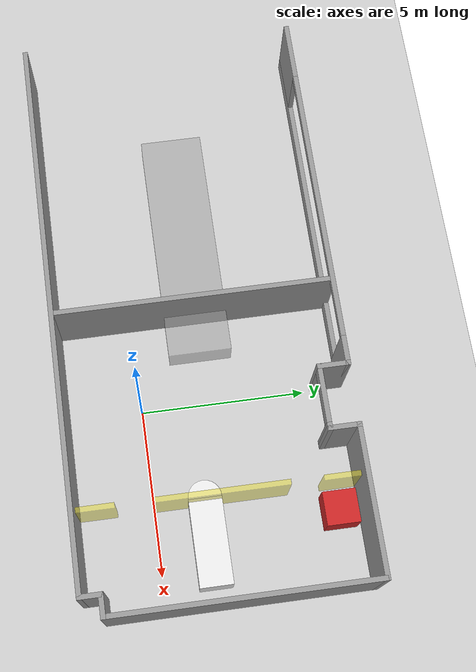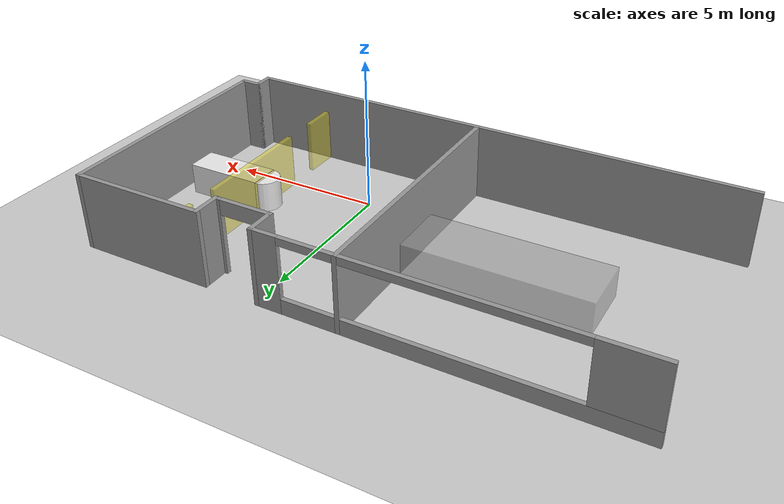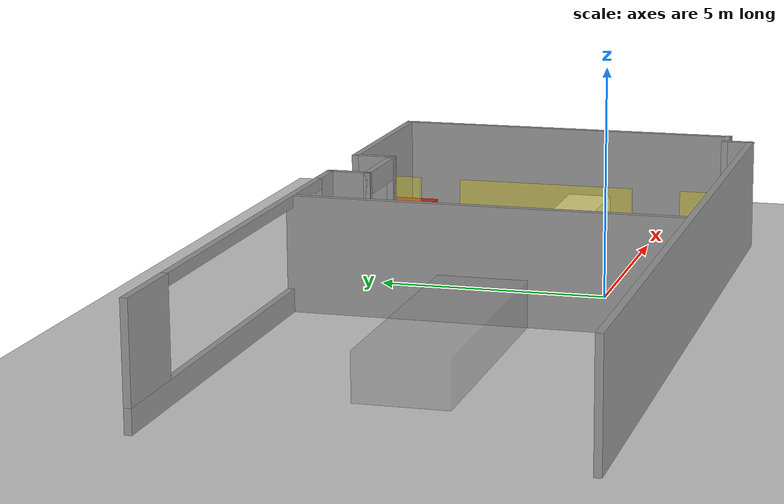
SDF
<sdf version="1.6">
 <world name="default">
  <light name="sun" type="directional">
   <pose>0 0 10 0 -0 0</pose>
   <diffuse>0.8 0.8 0.8 1</diffuse>
   <specular>0.2 0.2 0.2 1</specular>
   <attenuation>
    <range>1000</range>
    <constant>0.9</constant>
    <linear>0.01</linear>
    <quadratic>0.001</quadratic>
   </attenuation>
   <direction>-0.5 0.1 -0.9</direction>
  </light>
  <model name="ground_plane">
   <static>1</static>
   <link name="link">
    <collision name="collision">
     <geometry><plane><normal>0 0 1</normal><size>100 100</size></plane></geometry>
     <surface>
      <contact><collide_bitmask>65535</collide_bitmask></contact>
      <friction><ode><mu>100</mu><mu2>50</mu2></ode></friction>
     </surface>
    </collision>
    <visual name="visual">
     <cast_shadows>0</cast_shadows>
     <geometry><plane><normal>0 0 1</normal><size>100 100</size></plane></geometry>
     <material>
      <script><uri>file://media/materials/scripts/gazebo.material</uri><name>Gazebo/Grey</name></script>
     </material>
    </visual>
   </link>
  </model>
  <gravity>0 0 -9.8</gravity>
  <magnetic_field>6e-06 2.3e-05 -4.2e-05</magnetic_field>
  <atmosphere type="adiabatic"/>
  <physics name="default_physics" default="0" type="ode">
   <max_step_size>0.001</max_step_size>
   <real_time_factor>1</real_time_factor>
   <real_time_update_rate>1000</real_time_update_rate>
  </physics>
  <scene><ambient>0.4 0.4 0.4 1</ambient><background>0.7 0.7 0.7 1</background><shadows>1</shadows></scene>
  <audio><device>default</device></audio>
  <spherical_coordinates>
   <surface_model>EARTH_WGS84</surface_model>
   <latitude_deg>0</latitude_deg>
   <longitude_deg>0</longitude_deg>
   <elevation>0</elevation>
   <heading_deg>0</heading_deg>
  </spherical_coordinates>
  <model name="ENTLabConveyor">
   <link name="link_2">
    <inertial>
     <mass>1</mass>
     <inertia>
      <ixx>0.166667</ixx>
      <ixy>0</ixy>
      <ixz>0</ixz>
      <iyy>0.166667</iyy>
      <iyz>0</iyz>
      <izz>0.166667</izz>
     </inertia>
    </inertial>
    <pose>-0.32319 2.94451 -0.093077 0 -0 0</pose>
    <visual name="visual">
     <geometry><box><size>1 1 1</size></box></geometry>
     <material>
      <lighting>1</lighting>
      <script><uri>file://media/materials/scripts/gazebo.material</uri><name>Gazebo/Red</name></script>
      <shader type="vertex"><normal_map>__default__</normal_map></shader>
     </material>
    </visual>
    <collision name="collision">
     <geometry><box><size>1 1 1</size></box></geometry>
     <surface>
      <friction>
       <ode><mu>1</mu><mu2>1</mu2><fdir1>0 0 0</fdir1><slip1>0</slip1><slip2>0</slip2></ode>
       <torsional>
        <coefficient>1</coefficient>
        <patch_radius>0</patch_radius>
        <surface_radius>0</surface_radius>
        <use_patch_radius>1</use_patch_radius>
        <ode><slip>0</slip></ode>
       </torsional>
      </friction>
      <bounce><restitution_coefficient>0</restitution_coefficient><threshold>1e+06</threshold></bounce>
      <contact>
       <collide_without_contact>0</collide_without_contact>
       <collide_without_contact_bitmask>1</collide_without_contact_bitmask>
       <collide_bitmask>1</collide_bitmask>
       <ode>
        <soft_cfm>0</soft_cfm>
        <soft_erp>0.2</soft_erp>
        <kp>1e+13</kp>
        <kd>1</kd>
        <max_vel>0.01</max_vel>
        <min_depth>0</min_depth>
       </ode>
       <bullet>
        <split_impulse>1</split_impulse>
        <split_impulse_penetration_threshold>-0.01</split_impulse_penetration_threshold>
        <soft_cfm>0</soft_cfm>
        <soft_erp>0.2</soft_erp>
        <kp>1e+13</kp>
        <kd>1</kd>
       </bullet>
      </contact>
     </surface>
    </collision>
   </link>
   <link name="link_3">
    <inertial>
     <mass>1</mass>
     <inertia><ixx>0.145833</ixx><ixy>0</ixy><ixz>0</ixz><iyy>0.145833</iyy><iyz>0</iyz><izz>0.125</izz></inertia>
    </inertial>
    <pose>-1.13282 -0.976773 -0.093077 0 -0 0</pose>
    <visual name="visual">
     <geometry><cylinder><radius>0.5</radius><length>1</length></cylinder></geometry>
     <material>
      <lighting>1</lighting>
      <script><uri>file://media/materials/scripts/gazebo.material</uri><name>Gazebo/White</name></script>
      <shader type="vertex"><normal_map>__default__</normal_map></shader>
      <ambient>0.3 0.3 0.3 1</ambient>
      <diffuse>0.7 0.7 0.7 1</diffuse>
      <specular>0.01 0.01 0.01 1</specular>
      <emissive>0 0 0 1</emissive>
     </material>
    </visual>
    <collision name="collision">
     <geometry><cylinder><radius>0.5</radius><length>1</length></cylinder></geometry>
     <surface>
      <friction>
       <ode><mu>1</mu><mu2>1</mu2><fdir1>0 0 0</fdir1><slip1>0</slip1><slip2>0</slip2></ode>
       <torsional>
        <coefficient>1</coefficient>
        <patch_radius>0</patch_radius>
        <surface_radius>0</surface_radius>
        <use_patch_radius>1</use_patch_radius>
        <ode><slip>0</slip></ode>
       </torsional>
      </friction>
      <bounce><restitution_coefficient>0</restitution_coefficient><threshold>1e+06</threshold></bounce>
      <contact>
       <collide_without_contact>0</collide_without_contact>
       <collide_without_contact_bitmask>1</collide_without_contact_bitmask>
       <collide_bitmask>1</collide_bitmask>
       <ode>
        <soft_cfm>0</soft_cfm>
        <soft_erp>0.2</soft_erp>
        <kp>1e+13</kp>
        <kd>1</kd>
        <max_vel>0.01</max_vel>
        <min_depth>0</min_depth>
       </ode>
       <bullet>
        <split_impulse>1</split_impulse>
        <split_impulse_penetration_threshold>-0.01</split_impulse_penetration_threshold>
        <soft_cfm>0</soft_cfm>
        <soft_erp>0.2</soft_erp>
        <kp>1e+13</kp>
        <kd>1</kd>
       </bullet>
      </contact>
     </surface>
    </collision>
   </link>
   <link name="link_4">
    <inertial>
     <mass>2.64263</mass>
     <inertia><ixx>0.45335</ixx><ixy>0</ixy><ixz>0</ixz><iyy>1.68559</iyy><iyz>0</iyz><izz>1.66874</izz></inertia>
    </inertial>
    <pose>0.16809 -0.979226 -0.093077 0 -0 0</pose>
    <visual name="visual">
     <geometry><box><size>2.56643 0.995523 1.03323</size></box></geometry>
     <material>
      <lighting>1</lighting>
      <script><uri>file://media/materials/scripts/gazebo.material</uri><name>Gazebo/White</name></script>
      <shader type="vertex"><normal_map>__default__</normal_map></shader>
      <ambient>0.3 0.3 0.3 1</ambient>
      <diffuse>0.7 0.7 0.7 1</diffuse>
      <specular>0.01 0.01 0.01 1</specular>
      <emissive>0 0 0 1</emissive>
     </material>
    </visual>
    <collision name="collision">
     <geometry><box><size>2.56643 0.995523 1.03323</size></box></geometry>
     <surface>
      <friction>
       <ode><mu>1</mu><mu2>1</mu2><fdir1>0 0 0</fdir1><slip1>0</slip1><slip2>0</slip2></ode>
       <torsional>
        <coefficient>1</coefficient>
        <patch_radius>0</patch_radius>
        <surface_radius>0</surface_radius>
        <use_patch_radius>1</use_patch_radius>
        <ode><slip>0</slip></ode>
       </torsional>
      </friction>
      <bounce><restitution_coefficient>0</restitution_coefficient><threshold>1e+06</threshold></bounce>
      <contact>
       <collide_without_contact>0</collide_without_contact>
       <collide_without_contact_bitmask>1</collide_without_contact_bitmask>
       <collide_bitmask>1</collide_bitmask>
       <ode>
        <soft_cfm>0</soft_cfm>
        <soft_erp>0.2</soft_erp>
        <kp>1e+13</kp>
        <kd>1</kd>
        <max_vel>0.01</max_vel>
        <min_depth>0</min_depth>
       </ode>
       <bullet>
        <split_impulse>1</split_impulse>
        <split_impulse_penetration_threshold>-0.01</split_impulse_penetration_threshold>
        <soft_cfm>0</soft_cfm>
        <soft_erp>0.2</soft_erp>
        <kp>1e+13</kp>
        <kd>1</kd>
       </bullet>
      </contact>
     </surface>
    </collision>
   </link>
   <static>1</static>
   <pose>4.12263 2.50542 0.593077 0 -0 0</pose>
  </model>
  <model name="ENTWalls">
   <link name="link_0">
    <inertial>
     <mass>13.9555</mass>
     <inertia><ixx>5.43764</ixx><ixy>0</ixy><ixz>0</ixz><iyy>62.7819</iyy><iyz>0</iyz><izz>65.8936</izz></inertia>
    </inertial>
    <pose>-6.05773 0.013006 -0.292574 0 -0 0</pose>
    <visual name="visual">
     <geometry><box><size>7.27906 1.91721 1</size></box></geometry>
     <material>
      <lighting>1</lighting>
      <script><uri>file://media/materials/scripts/gazebo.material</uri><name>Gazebo/Grey</name></script>
      <shader type="vertex"><normal_map>__default__</normal_map></shader>
     </material>
     <transparency>.5</transparency>
    </visual>
    <collision name="collision">
     <geometry><box><size>7.27906 1.91721 1</size></box></geometry>
     <surface>
      <friction>
       <ode><mu>1</mu><mu2>1</mu2><fdir1>0 0 0</fdir1><slip1>0</slip1><slip2>0</slip2></ode>
       <torsional>
        <coefficient>1</coefficient>
        <patch_radius>0</patch_radius>
        <surface_radius>0</surface_radius>
        <use_patch_radius>1</use_patch_radius>
        <ode><slip>0</slip></ode>
       </torsional>
      </friction>
      <bounce><restitution_coefficient>0</restitution_coefficient><threshold>1e+06</threshold></bounce>
      <contact>
       <collide_without_contact>0</collide_without_contact>
       <collide_without_contact_bitmask>1</collide_without_contact_bitmask>
       <collide_bitmask>1</collide_bitmask>
       <ode>
        <soft_cfm>0</soft_cfm>
        <soft_erp>0.2</soft_erp>
        <kp>1e+13</kp>
        <kd>1</kd>
        <max_vel>0.01</max_vel>
        <min_depth>0</min_depth>
       </ode>
       <bullet>
        <split_impulse>1</split_impulse>
        <split_impulse_penetration_threshold>-0.01</split_impulse_penetration_threshold>
        <soft_cfm>0</soft_cfm>
        <soft_erp>0.2</soft_erp>
        <kp>1e+13</kp>
        <kd>1</kd>
       </bullet>
      </contact>
     </surface>
    </collision>
   </link>
   <link name="link_1">
    <inertial>
     <mass>0.314016</mass>
     <inertia>
      <ixx>0.113391</ixx>
      <ixy>0</ixy>
      <ixz>0</ixz>
      <iyy>0.0806634</iyy>
      <iyz>0</iyz>
      <izz>0.0340523</izz>
     </inertia>
    </inertial>
    <pose>2.01478 -3.63981 0.097525 0 -0 0</pose>
    <visual name="visual">
     <geometry><box><size>0.159122 1.12959 1.74849</size></box></geometry>
     <material>
      <lighting>1</lighting>
      <script><uri>file://media/materials/scripts/gazebo.material</uri><name>Gazebo/Yellow</name></script>
     </material>
     <transparency>.5</transparency>
    </visual>
    <collision name="collision">
     <geometry><box><size>0.159122 1.12959 1.74849</size></box></geometry>
     <surface>
      <friction>
       <ode><mu>1</mu><mu2>1</mu2><fdir1>0 0 0</fdir1><slip1>0</slip1><slip2>0</slip2></ode>
       <torsional>
        <coefficient>1</coefficient>
        <patch_radius>0</patch_radius>
        <surface_radius>0</surface_radius>
        <use_patch_radius>1</use_patch_radius>
        <ode><slip>0</slip></ode>
       </torsional>
      </friction>
      <bounce><restitution_coefficient>0</restitution_coefficient><threshold>1e+06</threshold></bounce>
      <contact>
       <collide_without_contact>0</collide_without_contact>
       <collide_without_contact_bitmask>1</collide_without_contact_bitmask>
       <collide_bitmask>1</collide_bitmask>
       <ode>
        <soft_cfm>0</soft_cfm>
        <soft_erp>0.2</soft_erp>
        <kp>1e+13</kp>
        <kd>1</kd>
        <max_vel>0.01</max_vel>
        <min_depth>0</min_depth>
       </ode>
       <bullet>
        <split_impulse>1</split_impulse>
        <split_impulse_penetration_threshold>-0.01</split_impulse_penetration_threshold>
        <soft_cfm>0</soft_cfm>
        <soft_erp>0.2</soft_erp>
        <kp>1e+13</kp>
        <kd>1</kd>
       </bullet>
      </contact>
     </surface>
    </collision>
   </link>
   <link name="link_1_clone">
    <inertial>
     <mass>0.314016</mass>
     <inertia>
      <ixx>0.113391</ixx>
      <ixy>0</ixy>
      <ixz>0</ixz>
      <iyy>0.0806634</iyy>
      <iyz>0</iyz>
      <izz>0.0340523</izz>
     </inertia>
    </inertial>
    <pose>2.02579 3.58487 0.097525 0 -0 0</pose>
    <visual name="visual">
     <geometry><box><size>0.159122 1.12959 1.74849</size></box></geometry>
     <material>
      <lighting>1</lighting>
      <script><uri>file://media/materials/scripts/gazebo.material</uri><name>Gazebo/Yellow</name></script>
      <shader type="pixel"/>
     </material>
     <transparency>.5</transparency>
    </visual>
    <collision name="collision">
     <geometry><box><size>0.159122 1.12959 1.74849</size></box></geometry>
     <surface>
      <friction>
       <ode><mu>1</mu><mu2>1</mu2><fdir1>0 0 0</fdir1><slip1>0</slip1><slip2>0</slip2></ode>
       <torsional>
        <coefficient>1</coefficient>
        <patch_radius>0</patch_radius>
        <surface_radius>0</surface_radius>
        <use_patch_radius>1</use_patch_radius>
        <ode><slip>0</slip></ode>
       </torsional>
      </friction>
      <bounce><restitution_coefficient>0</restitution_coefficient><threshold>1e+06</threshold></bounce>
      <contact>
       <collide_without_contact>0</collide_without_contact>
       <collide_without_contact_bitmask>1</collide_without_contact_bitmask>
       <collide_bitmask>1</collide_bitmask>
       <ode>
        <soft_cfm>0</soft_cfm>
        <soft_erp>0.2</soft_erp>
        <kp>1e+13</kp>
        <kd>1</kd>
        <max_vel>0.01</max_vel>
        <min_depth>0</min_depth>
       </ode>
       <bullet>
        <split_impulse>1</split_impulse>
        <split_impulse_penetration_threshold>-0.01</split_impulse_penetration_threshold>
        <soft_cfm>0</soft_cfm>
        <soft_erp>0.2</soft_erp>
        <kp>1e+13</kp>
        <kd>1</kd>
       </bullet>
      </contact>
     </surface>
    </collision>
   </link>
   <link name="link_1_clone_0">
    <inertial>
     <mass>1.11463</mass>
     <inertia><ixx>1.77728</ixx><ixy>0</ixy><ixz>0</ixz><iyy>0.286324</iyy><iyz>0</iyz><izz>1.49566</izz></inertia>
    </inertial>
    <pose>2.01715 0.041929 0.097525 0 -0 0</pose>
    <visual name="visual">
     <geometry><box><size>0.159122 4.00959 1.74849</size></box></geometry>
     <material>
      <lighting>1</lighting>
      <script><uri>file://media/materials/scripts/gazebo.material</uri><name>Gazebo/Yellow</name></script>
      <shader type="pixel"/>
     </material>
     <transparency>.5</transparency>
    </visual>
    <collision name="collision">
     <geometry><box><size>0.159122 4.00959 1.74849</size></box></geometry>
     <surface>
      <friction>
       <ode><mu>1</mu><mu2>1</mu2><fdir1>0 0 0</fdir1><slip1>0</slip1><slip2>0</slip2></ode>
       <torsional>
        <coefficient>1</coefficient>
        <patch_radius>0</patch_radius>
        <surface_radius>0</surface_radius>
        <use_patch_radius>1</use_patch_radius>
        <ode><slip>0</slip></ode>
       </torsional>
      </friction>
      <bounce><restitution_coefficient>0</restitution_coefficient><threshold>1e+06</threshold></bounce>
      <contact>
       <collide_without_contact>0</collide_without_contact>
       <collide_without_contact_bitmask>1</collide_without_contact_bitmask>
       <collide_bitmask>1</collide_bitmask>
       <ode>
        <soft_cfm>0</soft_cfm>
        <soft_erp>0.2</soft_erp>
        <kp>1e+13</kp>
        <kd>1</kd>
        <max_vel>0.01</max_vel>
        <min_depth>0</min_depth>
       </ode>
       <bullet>
        <split_impulse>1</split_impulse>
        <split_impulse_penetration_threshold>-0.01</split_impulse_penetration_threshold>
        <soft_cfm>0</soft_cfm>
        <soft_erp>0.2</soft_erp>
        <kp>1e+13</kp>
        <kd>1</kd>
       </bullet>
      </contact>
     </surface>
    </collision>
   </link>
   <static>1</static>
   <pose>0.99427 1.97839 0.792574 0 -0 0</pose>
  </model>
  <model name="ENTBuilding">
   <link name="Wall_12">
    <pose>2.65 3.8 0 0 0 -1.5708</pose>
    <visual name="Wall_12_Visual">
     <pose>0 0 1.25 0 -0 0</pose>
     <geometry><box><size>1 0.15 2.5</size></box></geometry>
     <material>
      <script><uri>file://media/materials/scripts/gazebo.material</uri><name>Gazebo/Grey</name></script>
      <ambient>1 1 1 1</ambient>
     </material>
     <meta><layer>0</layer></meta>
    </visual>
    <collision name="Wall_12_Collision">
     <pose>0 0 1.25 0 -0 0</pose>
     <geometry><box><size>1 0.15 2.5</size></box></geometry>
     <surface>
      <friction>
       <ode><mu>1</mu><mu2>1</mu2><fdir1>0 0 0</fdir1><slip1>0</slip1><slip2>0</slip2></ode>
       <torsional>
        <coefficient>1</coefficient>
        <patch_radius>0</patch_radius>
        <surface_radius>0</surface_radius>
        <use_patch_radius>1</use_patch_radius>
        <ode><slip>0</slip></ode>
       </torsional>
      </friction>
      <bounce><restitution_coefficient>0</restitution_coefficient><threshold>1e+06</threshold></bounce>
      <contact>
       <collide_without_contact>0</collide_without_contact>
       <collide_without_contact_bitmask>1</collide_without_contact_bitmask>
       <collide_bitmask>1</collide_bitmask>
       <ode>
        <soft_cfm>0</soft_cfm>
        <soft_erp>0.2</soft_erp>
        <kp>1e+13</kp>
        <kd>1</kd>
        <max_vel>0.01</max_vel>
        <min_depth>0</min_depth>
       </ode>
       <bullet>
        <split_impulse>1</split_impulse>
        <split_impulse_penetration_threshold>-0.01</split_impulse_penetration_threshold>
        <soft_cfm>0</soft_cfm>
        <soft_erp>0.2</soft_erp>
        <kp>1e+13</kp>
        <kd>1</kd>
       </bullet>
      </contact>
     </surface>
    </collision>
   </link>
   <link name="Wall_15">
    <pose>-3.025 4.225 0 0 -0 3.14159</pose>
    <visual name="Wall_15_Visual_0">
     <pose>-5.29383 0 1.25 0 -0 0</pose>
     <geometry><box><size>0.912343 0.15 2.5</size></box></geometry>
     <material>
      <script><uri>file://media/materials/scripts/gazebo.material</uri><name>Gazebo/Grey</name></script>
      <ambient>1 1 1 1</ambient>
     </material>
     <meta><layer>0</layer></meta>
    </visual>
    <visual name="Wall_15_Visual_1">
     <pose>0.456172 0 0.25 0 -0 0</pose>
     <geometry><box><size>10.5877 0.15 0.5</size></box></geometry>
     <material>
      <script><uri>file://media/materials/scripts/gazebo.material</uri><name>Gazebo/Grey</name></script>
      <ambient>1 1 1 1</ambient>
     </material>
     <meta><layer>0</layer></meta>
    </visual>
    <visual name="Wall_15_Visual_2">
     <pose>4.8201 0 1.5 0 -0 0</pose>
     <geometry><box><size>1.85979 0.15 2</size></box></geometry>
     <material>
      <script><uri>file://media/materials/scripts/gazebo.material</uri><name>Gazebo/Grey</name></script>
      <ambient>1 1 1 1</ambient>
     </material>
     <meta><layer>0</layer></meta>
    </visual>
    <visual name="Wall_15_Visual_3">
     <pose>-0.473723 0 2.375 0 -0 0</pose>
     <geometry><box><size>8.72787 0.15 0.25</size></box></geometry>
     <material>
      <script><uri>file://media/materials/scripts/gazebo.material</uri><name>Gazebo/Grey</name></script>
      <ambient>1 1 1 1</ambient>
     </material>
     <meta><layer>0</layer></meta>
    </visual>
    <collision name="Wall_15_Collision_0">
     <pose>-5.29383 0 1.25 0 -0 0</pose>
     <geometry><box><size>0.912343 0.15 2.5</size></box></geometry>
     <surface>
      <friction>
       <ode><mu>1</mu><mu2>1</mu2><fdir1>0 0 0</fdir1><slip1>0</slip1><slip2>0</slip2></ode>
       <torsional>
        <coefficient>1</coefficient>
        <patch_radius>0</patch_radius>
        <surface_radius>0</surface_radius>
        <use_patch_radius>1</use_patch_radius>
        <ode><slip>0</slip></ode>
       </torsional>
      </friction>
      <bounce><restitution_coefficient>0</restitution_coefficient><threshold>1e+06</threshold></bounce>
      <contact>
       <collide_without_contact>0</collide_without_contact>
       <collide_without_contact_bitmask>1</collide_without_contact_bitmask>
       <collide_bitmask>1</collide_bitmask>
       <ode>
        <soft_cfm>0</soft_cfm>
        <soft_erp>0.2</soft_erp>
        <kp>1e+13</kp>
        <kd>1</kd>
        <max_vel>0.01</max_vel>
        <min_depth>0</min_depth>
       </ode>
       <bullet>
        <split_impulse>1</split_impulse>
        <split_impulse_penetration_threshold>-0.01</split_impulse_penetration_threshold>
        <soft_cfm>0</soft_cfm>
        <soft_erp>0.2</soft_erp>
        <kp>1e+13</kp>
        <kd>1</kd>
       </bullet>
      </contact>
     </surface>
    </collision>
    <collision name="Wall_15_Collision_1">
     <pose>0.456172 0 0.25 0 -0 0</pose>
     <geometry><box><size>10.5877 0.15 0.5</size></box></geometry>
     <surface>
      <friction>
       <ode><mu>1</mu><mu2>1</mu2><fdir1>0 0 0</fdir1><slip1>0</slip1><slip2>0</slip2></ode>
       <torsional>
        <coefficient>1</coefficient>
        <patch_radius>0</patch_radius>
        <surface_radius>0</surface_radius>
        <use_patch_radius>1</use_patch_radius>
        <ode><slip>0</slip></ode>
       </torsional>
      </friction>
      <bounce><restitution_coefficient>0</restitution_coefficient><threshold>1e+06</threshold></bounce>
      <contact>
       <collide_without_contact>0</collide_without_contact>
       <collide_without_contact_bitmask>1</collide_without_contact_bitmask>
       <collide_bitmask>1</collide_bitmask>
       <ode>
        <soft_cfm>0</soft_cfm>
        <soft_erp>0.2</soft_erp>
        <kp>1e+13</kp>
        <kd>1</kd>
        <max_vel>0.01</max_vel>
        <min_depth>0</min_depth>
       </ode>
       <bullet>
        <split_impulse>1</split_impulse>
        <split_impulse_penetration_threshold>-0.01</split_impulse_penetration_threshold>
        <soft_cfm>0</soft_cfm>
        <soft_erp>0.2</soft_erp>
        <kp>1e+13</kp>
        <kd>1</kd>
       </bullet>
      </contact>
     </surface>
    </collision>
    <collision name="Wall_15_Collision_2">
     <pose>4.8201 0 1.5 0 -0 0</pose>
     <geometry><box><size>1.85979 0.15 2</size></box></geometry>
     <surface>
      <friction>
       <ode><mu>1</mu><mu2>1</mu2><fdir1>0 0 0</fdir1><slip1>0</slip1><slip2>0</slip2></ode>
       <torsional>
        <coefficient>1</coefficient>
        <patch_radius>0</patch_radius>
        <surface_radius>0</surface_radius>
        <use_patch_radius>1</use_patch_radius>
        <ode><slip>0</slip></ode>
       </torsional>
      </friction>
      <bounce><restitution_coefficient>0</restitution_coefficient><threshold>1e+06</threshold></bounce>
      <contact>
       <collide_without_contact>0</collide_without_contact>
       <collide_without_contact_bitmask>1</collide_without_contact_bitmask>
       <collide_bitmask>1</collide_bitmask>
       <ode>
        <soft_cfm>0</soft_cfm>
        <soft_erp>0.2</soft_erp>
        <kp>1e+13</kp>
        <kd>1</kd>
        <max_vel>0.01</max_vel>
        <min_depth>0</min_depth>
       </ode>
       <bullet>
        <split_impulse>1</split_impulse>
        <split_impulse_penetration_threshold>-0.01</split_impulse_penetration_threshold>
        <soft_cfm>0</soft_cfm>
        <soft_erp>0.2</soft_erp>
        <kp>1e+13</kp>
        <kd>1</kd>
       </bullet>
      </contact>
     </surface>
    </collision>
    <collision name="Wall_15_Collision_3">
     <pose>-0.473723 0 2.375 0 -0 0</pose>
     <geometry><box><size>8.72787 0.15 0.25</size></box></geometry>
     <surface>
      <friction>
       <ode><mu>1</mu><mu2>1</mu2><fdir1>0 0 0</fdir1><slip1>0</slip1><slip2>0</slip2></ode>
       <torsional>
        <coefficient>1</coefficient>
        <patch_radius>0</patch_radius>
        <surface_radius>0</surface_radius>
        <use_patch_radius>1</use_patch_radius>
        <ode><slip>0</slip></ode>
       </torsional>
      </friction>
      <bounce><restitution_coefficient>0</restitution_coefficient><threshold>1e+06</threshold></bounce>
      <contact>
       <collide_without_contact>0</collide_without_contact>
       <collide_without_contact_bitmask>1</collide_without_contact_bitmask>
       <collide_bitmask>1</collide_bitmask>
       <ode>
        <soft_cfm>0</soft_cfm>
        <soft_erp>0.2</soft_erp>
        <kp>1e+13</kp>
        <kd>1</kd>
        <max_vel>0.01</max_vel>
        <min_depth>0</min_depth>
       </ode>
       <bullet>
        <split_impulse>1</split_impulse>
        <split_impulse_penetration_threshold>-0.01</split_impulse_penetration_threshold>
        <soft_cfm>0</soft_cfm>
        <soft_erp>0.2</soft_erp>
        <kp>1e+13</kp>
        <kd>1</kd>
       </bullet>
      </contact>
     </surface>
    </collision>
   </link>
   <link name="Wall_16">
    <pose>0 0.05 0 0 0 -1.5708</pose>
    <inertial>
     <mass>1</mass>
     <inertia><ixx>1</ixx><ixy>0</ixy><ixz>0</ixz><iyy>1</iyy><iyz>0</iyz><izz>1</izz></inertia>
    </inertial>
    <visual name="Wall_16_Visual">
     <pose>0 0 1.25 0 -0 0</pose>
     <geometry><box><size>8.5 0.15 2.5</size></box></geometry>
     <material>
      <script><uri>file://media/materials/scripts/gazebo.material</uri><name>Gazebo/Grey</name></script>
      <ambient>1 1 1 1</ambient>
      <shader type="vertex"><normal_map>__default__</normal_map></shader>
      <diffuse>0.7 0.7 0.7 1</diffuse>
      <specular>0.01 0.01 0.01 1</specular>
      <emissive>0 0 0 1</emissive>
     </material>
     <meta><layer>0</layer></meta>
    </visual>
    <collision name="Wall_16_Collision">
     <pose>0 0 1.25 0 -0 0</pose>
     <geometry><box><size>8.5 0.15 2.5</size></box></geometry>
     <surface>
      <friction>
       <ode><mu>1</mu><mu2>1</mu2><fdir1>0 0 0</fdir1><slip1>0</slip1><slip2>0</slip2></ode>
       <torsional>
        <coefficient>1</coefficient>
        <patch_radius>0</patch_radius>
        <surface_radius>0</surface_radius>
        <use_patch_radius>1</use_patch_radius>
        <ode><slip>0</slip></ode>
       </torsional>
      </friction>
      <bounce><restitution_coefficient>0</restitution_coefficient><threshold>1e+06</threshold></bounce>
      <contact>
       <collide_without_contact>0</collide_without_contact>
       <collide_without_contact_bitmask>1</collide_without_contact_bitmask>
       <collide_bitmask>1</collide_bitmask>
       <ode>
        <soft_cfm>0</soft_cfm>
        <soft_erp>0.2</soft_erp>
        <kp>1e+13</kp>
        <kd>1</kd>
        <max_vel>0.01</max_vel>
        <min_depth>0</min_depth>
       </ode>
       <bullet>
        <split_impulse>1</split_impulse>
        <split_impulse_penetration_threshold>-0.01</split_impulse_penetration_threshold>
        <soft_cfm>0</soft_cfm>
        <soft_erp>0.2</soft_erp>
        <kp>1e+13</kp>
        <kd>1</kd>
       </bullet>
      </contact>
     </surface>
    </collision>
   </link>
   <link name="Wall_19">
    <pose>8.55 -3.625 0 0 -0 3.14159</pose>
    <visual name="Wall_19_Visual">
     <pose>0 0 1.25 0 -0 0</pose>
     <geometry><box><size>0.75 0.15 2.5</size></box></geometry>
     <material>
      <script><uri>file://media/materials/scripts/gazebo.material</uri><name>Gazebo/Grey</name></script>
      <ambient>1 1 1 1</ambient>
     </material>
     <meta><layer>0</layer></meta>
    </visual>
    <collision name="Wall_19_Collision">
     <pose>0 0 1.25 0 -0 0</pose>
     <geometry><box><size>0.75 0.15 2.5</size></box></geometry>
     <surface>
      <friction>
       <ode><mu>1</mu><mu2>1</mu2><fdir1>0 0 0</fdir1><slip1>0</slip1><slip2>0</slip2></ode>
       <torsional>
        <coefficient>1</coefficient>
        <patch_radius>0</patch_radius>
        <surface_radius>0</surface_radius>
        <use_patch_radius>1</use_patch_radius>
        <ode><slip>0</slip></ode>
       </torsional>
      </friction>
      <bounce><restitution_coefficient>0</restitution_coefficient><threshold>1e+06</threshold></bounce>
      <contact>
       <collide_without_contact>0</collide_without_contact>
       <collide_without_contact_bitmask>1</collide_without_contact_bitmask>
       <collide_bitmask>1</collide_bitmask>
       <ode>
        <soft_cfm>0</soft_cfm>
        <soft_erp>0.2</soft_erp>
        <kp>1e+13</kp>
        <kd>1</kd>
        <max_vel>0.01</max_vel>
        <min_depth>0</min_depth>
       </ode>
       <bullet>
        <split_impulse>1</split_impulse>
        <split_impulse_penetration_threshold>-0.01</split_impulse_penetration_threshold>
        <soft_cfm>0</soft_cfm>
        <soft_erp>0.2</soft_erp>
        <kp>1e+13</kp>
        <kd>1</kd>
       </bullet>
      </contact>
     </surface>
    </collision>
   </link>
   <link name="Wall_24">
    <pose>8.25 -3.925 0 0 0 -1.5708</pose>
    <visual name="Wall_24_Visual">
     <pose>0 0 1.25 0 -0 0</pose>
     <geometry><box><size>0.75 0.15 2.5</size></box></geometry>
     <material>
      <script><uri>file://media/materials/scripts/gazebo.material</uri><name>Gazebo/Grey</name></script>
      <ambient>1 1 1 1</ambient>
     </material>
     <meta><layer>0</layer></meta>
    </visual>
    <collision name="Wall_24_Collision">
     <pose>0 0 1.25 0 -0 0</pose>
     <geometry><box><size>0.75 0.15 2.5</size></box></geometry>
     <surface>
      <friction>
       <ode><mu>1</mu><mu2>1</mu2><fdir1>0 0 0</fdir1><slip1>0</slip1><slip2>0</slip2></ode>
       <torsional>
        <coefficient>1</coefficient>
        <patch_radius>0</patch_radius>
        <surface_radius>0</surface_radius>
        <use_patch_radius>1</use_patch_radius>
        <ode><slip>0</slip></ode>
       </torsional>
      </friction>
      <bounce><restitution_coefficient>0</restitution_coefficient><threshold>1e+06</threshold></bounce>
      <contact>
       <collide_without_contact>0</collide_without_contact>
       <collide_without_contact_bitmask>1</collide_without_contact_bitmask>
       <collide_bitmask>1</collide_bitmask>
       <ode>
        <soft_cfm>0</soft_cfm>
        <soft_erp>0.2</soft_erp>
        <kp>1e+13</kp>
        <kd>1</kd>
        <max_vel>0.01</max_vel>
        <min_depth>0</min_depth>
       </ode>
       <bullet>
        <split_impulse>1</split_impulse>
        <split_impulse_penetration_threshold>-0.01</split_impulse_penetration_threshold>
        <soft_cfm>0</soft_cfm>
        <soft_erp>0.2</soft_erp>
        <kp>1e+13</kp>
        <kd>1</kd>
       </bullet>
      </contact>
     </surface>
    </collision>
   </link>
   <link name="Wall_25">
    <pose>-0.3 -4.225 0 0 -0 3.14159</pose>
    <visual name="Wall_25_Visual">
     <pose>0 0 1.25 0 -0 0</pose>
     <geometry><box><size>17.25 0.15 2.5</size></box></geometry>
     <material>
      <script><uri>file://media/materials/scripts/gazebo.material</uri><name>Gazebo/Grey</name></script>
      <ambient>1 1 1 1</ambient>
     </material>
     <meta><layer>0</layer></meta>
    </visual>
    <collision name="Wall_25_Collision">
     <pose>0 0 1.25 0 -0 0</pose>
     <geometry><box><size>17.25 0.15 2.5</size></box></geometry>
     <surface>
      <friction>
       <ode><mu>1</mu><mu2>1</mu2><fdir1>0 0 0</fdir1><slip1>0</slip1><slip2>0</slip2></ode>
       <torsional>
        <coefficient>1</coefficient>
        <patch_radius>0</patch_radius>
        <surface_radius>0</surface_radius>
        <use_patch_radius>1</use_patch_radius>
        <ode><slip>0</slip></ode>
       </torsional>
      </friction>
      <bounce><restitution_coefficient>0</restitution_coefficient><threshold>1e+06</threshold></bounce>
      <contact>
       <collide_without_contact>0</collide_without_contact>
       <collide_without_contact_bitmask>1</collide_without_contact_bitmask>
       <collide_bitmask>1</collide_bitmask>
       <ode>
        <soft_cfm>0</soft_cfm>
        <soft_erp>0.2</soft_erp>
        <kp>1e+13</kp>
        <kd>1</kd>
        <max_vel>0.01</max_vel>
        <min_depth>0</min_depth>
       </ode>
       <bullet>
        <split_impulse>1</split_impulse>
        <split_impulse_penetration_threshold>-0.01</split_impulse_penetration_threshold>
        <soft_cfm>0</soft_cfm>
        <soft_erp>0.2</soft_erp>
        <kp>1e+13</kp>
        <kd>1</kd>
       </bullet>
      </contact>
     </surface>
    </collision>
   </link>
   <link name="Wall_27">
    <pose>3.575 3.375 0 0 -0 0</pose>
    <visual name="Wall_27_Visual_0">
     <pose>-0.928767 0 1.25 0 -0 0</pose>
     <geometry><box><size>0.142465 0.15 2.5</size></box></geometry>
     <material>
      <script><uri>file://media/materials/scripts/gazebo.material</uri><name>Gazebo/Grey</name></script>
      <ambient>1 1 1 1</ambient>
     </material>
     <meta><layer>0</layer></meta>
    </visual>
    <visual name="Wall_27_Visual_1">
     <pose>0.876651 0 1.25 0 -0 0</pose>
     <geometry><box><size>0.246698 0.15 2.5</size></box></geometry>
     <material>
      <script><uri>file://media/materials/scripts/gazebo.material</uri><name>Gazebo/Grey</name></script>
      <ambient>1 1 1 1</ambient>
     </material>
     <meta><layer>0</layer></meta>
    </visual>
    <visual name="Wall_27_Visual_2">
     <pose>-0.052116 0 2.25 0 -0 0</pose>
     <geometry><box><size>1.61084 0.15 0.5</size></box></geometry>
     <material>
      <script><uri>file://media/materials/scripts/gazebo.material</uri><name>Gazebo/Grey</name></script>
      <ambient>1 1 1 1</ambient>
     </material>
     <meta><layer>0</layer></meta>
    </visual>
    <collision name="Wall_27_Collision_0">
     <pose>-0.928767 0 1.25 0 -0 0</pose>
     <geometry><box><size>0.142465 0.15 2.5</size></box></geometry>
     <surface>
      <friction>
       <ode><mu>1</mu><mu2>1</mu2><fdir1>0 0 0</fdir1><slip1>0</slip1><slip2>0</slip2></ode>
       <torsional>
        <coefficient>1</coefficient>
        <patch_radius>0</patch_radius>
        <surface_radius>0</surface_radius>
        <use_patch_radius>1</use_patch_radius>
        <ode><slip>0</slip></ode>
       </torsional>
      </friction>
      <bounce><restitution_coefficient>0</restitution_coefficient><threshold>1e+06</threshold></bounce>
      <contact>
       <collide_without_contact>0</collide_without_contact>
       <collide_without_contact_bitmask>1</collide_without_contact_bitmask>
       <collide_bitmask>1</collide_bitmask>
       <ode>
        <soft_cfm>0</soft_cfm>
        <soft_erp>0.2</soft_erp>
        <kp>1e+13</kp>
        <kd>1</kd>
        <max_vel>0.01</max_vel>
        <min_depth>0</min_depth>
       </ode>
       <bullet>
        <split_impulse>1</split_impulse>
        <split_impulse_penetration_threshold>-0.01</split_impulse_penetration_threshold>
        <soft_cfm>0</soft_cfm>
        <soft_erp>0.2</soft_erp>
        <kp>1e+13</kp>
        <kd>1</kd>
       </bullet>
      </contact>
     </surface>
    </collision>
    <collision name="Wall_27_Collision_1">
     <pose>0.876651 0 1.25 0 -0 0</pose>
     <geometry><box><size>0.246698 0.15 2.5</size></box></geometry>
     <surface>
      <friction>
       <ode><mu>1</mu><mu2>1</mu2><fdir1>0 0 0</fdir1><slip1>0</slip1><slip2>0</slip2></ode>
       <torsional>
        <coefficient>1</coefficient>
        <patch_radius>0</patch_radius>
        <surface_radius>0</surface_radius>
        <use_patch_radius>1</use_patch_radius>
        <ode><slip>0</slip></ode>
       </torsional>
      </friction>
      <bounce><restitution_coefficient>0</restitution_coefficient><threshold>1e+06</threshold></bounce>
      <contact>
       <collide_without_contact>0</collide_without_contact>
       <collide_without_contact_bitmask>1</collide_without_contact_bitmask>
       <collide_bitmask>1</collide_bitmask>
       <ode>
        <soft_cfm>0</soft_cfm>
        <soft_erp>0.2</soft_erp>
        <kp>1e+13</kp>
        <kd>1</kd>
        <max_vel>0.01</max_vel>
        <min_depth>0</min_depth>
       </ode>
       <bullet>
        <split_impulse>1</split_impulse>
        <split_impulse_penetration_threshold>-0.01</split_impulse_penetration_threshold>
        <soft_cfm>0</soft_cfm>
        <soft_erp>0.2</soft_erp>
        <kp>1e+13</kp>
        <kd>1</kd>
       </bullet>
      </contact>
     </surface>
    </collision>
    <collision name="Wall_27_Collision_2">
     <pose>-0.052116 0 2.25 0 -0 0</pose>
     <geometry><box><size>1.61084 0.15 0.5</size></box></geometry>
     <surface>
      <friction>
       <ode><mu>1</mu><mu2>1</mu2><fdir1>0 0 0</fdir1><slip1>0</slip1><slip2>0</slip2></ode>
       <torsional>
        <coefficient>1</coefficient>
        <patch_radius>0</patch_radius>
        <surface_radius>0</surface_radius>
        <use_patch_radius>1</use_patch_radius>
        <ode><slip>0</slip></ode>
       </torsional>
      </friction>
      <bounce><restitution_coefficient>0</restitution_coefficient><threshold>1e+06</threshold></bounce>
      <contact>
       <collide_without_contact>0</collide_without_contact>
       <collide_without_contact_bitmask>1</collide_without_contact_bitmask>
       <collide_bitmask>1</collide_bitmask>
       <ode>
        <soft_cfm>0</soft_cfm>
        <soft_erp>0.2</soft_erp>
        <kp>1e+13</kp>
        <kd>1</kd>
        <max_vel>0.01</max_vel>
        <min_depth>0</min_depth>
       </ode>
       <bullet>
        <split_impulse>1</split_impulse>
        <split_impulse_penetration_threshold>-0.01</split_impulse_penetration_threshold>
        <soft_cfm>0</soft_cfm>
        <soft_erp>0.2</soft_erp>
        <kp>1e+13</kp>
        <kd>1</kd>
       </bullet>
      </contact>
     </surface>
    </collision>
   </link>
   <link name="Wall_5">
    <pose>8.85 0.3 0 0 -0 1.5708</pose>
    <visual name="Wall_5_Visual">
     <pose>0 0 1.25 0 -0 0</pose>
     <geometry><box><size>8 0.15 2.5</size></box></geometry>
     <material>
      <script><uri>file://media/materials/scripts/gazebo.material</uri><name>Gazebo/Grey</name></script>
      <ambient>1 1 1 1</ambient>
     </material>
     <meta><layer>0</layer></meta>
    </visual>
    <collision name="Wall_5_Collision">
     <pose>0 0 1.25 0 -0 0</pose>
     <geometry><box><size>8 0.15 2.5</size></box></geometry>
     <surface>
      <friction>
       <ode><mu>1</mu><mu2>1</mu2><fdir1>0 0 0</fdir1><slip1>0</slip1><slip2>0</slip2></ode>
       <torsional>
        <coefficient>1</coefficient>
        <patch_radius>0</patch_radius>
        <surface_radius>0</surface_radius>
        <use_patch_radius>1</use_patch_radius>
        <ode><slip>0</slip></ode>
       </torsional>
      </friction>
      <bounce><restitution_coefficient>0</restitution_coefficient><threshold>1e+06</threshold></bounce>
      <contact>
       <collide_without_contact>0</collide_without_contact>
       <collide_without_contact_bitmask>1</collide_without_contact_bitmask>
       <collide_bitmask>1</collide_bitmask>
       <ode>
        <soft_cfm>0</soft_cfm>
        <soft_erp>0.2</soft_erp>
        <kp>1e+13</kp>
        <kd>1</kd>
        <max_vel>0.01</max_vel>
        <min_depth>0</min_depth>
       </ode>
       <bullet>
        <split_impulse>1</split_impulse>
        <split_impulse_penetration_threshold>-0.01</split_impulse_penetration_threshold>
        <soft_cfm>0</soft_cfm>
        <soft_erp>0.2</soft_erp>
        <kp>1e+13</kp>
        <kd>1</kd>
       </bullet>
      </contact>
     </surface>
    </collision>
   </link>
   <link name="Wall_6">
    <pose>6.675 4.225 0 0 -0 3.14159</pose>
    <visual name="Wall_6_Visual">
     <pose>0 0 1.25 0 -0 0</pose>
     <geometry><box><size>4.5 0.15 2.5</size></box></geometry>
     <material>
      <script><uri>file://media/materials/scripts/gazebo.material</uri><name>Gazebo/Grey</name></script>
      <ambient>1 1 1 1</ambient>
     </material>
     <meta><layer>0</layer></meta>
    </visual>
    <collision name="Wall_6_Collision">
     <pose>0 0 1.25 0 -0 0</pose>
     <geometry><box><size>4.5 0.15 2.5</size></box></geometry>
     <surface>
      <friction>
       <ode><mu>1</mu><mu2>1</mu2><fdir1>0 0 0</fdir1><slip1>0</slip1><slip2>0</slip2></ode>
       <torsional>
        <coefficient>1</coefficient>
        <patch_radius>0</patch_radius>
        <surface_radius>0</surface_radius>
        <use_patch_radius>1</use_patch_radius>
        <ode><slip>0</slip></ode>
       </torsional>
      </friction>
      <bounce><restitution_coefficient>0</restitution_coefficient><threshold>1e+06</threshold></bounce>
      <contact>
       <collide_without_contact>0</collide_without_contact>
       <collide_without_contact_bitmask>1</collide_without_contact_bitmask>
       <collide_bitmask>1</collide_bitmask>
       <ode>
        <soft_cfm>0</soft_cfm>
        <soft_erp>0.2</soft_erp>
        <kp>1e+13</kp>
        <kd>1</kd>
        <max_vel>0.01</max_vel>
        <min_depth>0</min_depth>
       </ode>
       <bullet>
        <split_impulse>1</split_impulse>
        <split_impulse_penetration_threshold>-0.01</split_impulse_penetration_threshold>
        <soft_cfm>0</soft_cfm>
        <soft_erp>0.2</soft_erp>
        <kp>1e+13</kp>
        <kd>1</kd>
       </bullet>
      </contact>
     </surface>
    </collision>
   </link>
   <link name="Wall_7">
    <pose>4.5 3.8 0 0 0 -1.5708</pose>
    <visual name="Wall_7_Visual">
     <pose>0 0 1.25 0 -0 0</pose>
     <geometry><box><size>1 0.15 2.5</size></box></geometry>
     <material>
      <script><uri>file://media/materials/scripts/gazebo.material</uri><name>Gazebo/Grey</name></script>
      <ambient>1 1 1 1</ambient>
     </material>
     <meta><layer>0</layer></meta>
    </visual>
    <collision name="Wall_7_Collision">
     <pose>0 0 1.25 0 -0 0</pose>
     <geometry><box><size>1 0.15 2.5</size></box></geometry>
     <surface>
      <friction>
       <ode><mu>1</mu><mu2>1</mu2><fdir1>0 0 0</fdir1><slip1>0</slip1><slip2>0</slip2></ode>
       <torsional>
        <coefficient>1</coefficient>
        <patch_radius>0</patch_radius>
        <surface_radius>0</surface_radius>
        <use_patch_radius>1</use_patch_radius>
        <ode><slip>0</slip></ode>
       </torsional>
      </friction>
      <bounce><restitution_coefficient>0</restitution_coefficient><threshold>1e+06</threshold></bounce>
      <contact>
       <collide_without_contact>0</collide_without_contact>
       <collide_without_contact_bitmask>1</collide_without_contact_bitmask>
       <collide_bitmask>1</collide_bitmask>
       <ode>
        <soft_cfm>0</soft_cfm>
        <soft_erp>0.2</soft_erp>
        <kp>1e+13</kp>
        <kd>1</kd>
        <max_vel>0.01</max_vel>
        <min_depth>0</min_depth>
       </ode>
       <bullet>
        <split_impulse>1</split_impulse>
        <split_impulse_penetration_threshold>-0.01</split_impulse_penetration_threshold>
        <soft_cfm>0</soft_cfm>
        <soft_erp>0.2</soft_erp>
        <kp>1e+13</kp>
        <kd>1</kd>
       </bullet>
      </contact>
     </surface>
    </collision>
   </link>
   <static>1</static>
   <pose>-2.7429 1.92238 0 0 -0 0</pose>
  </model>
 </world>
</sdf>
